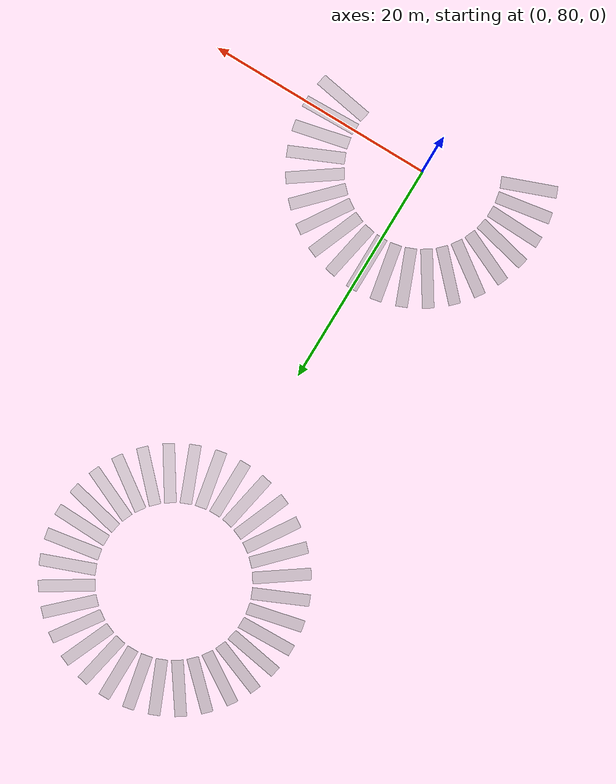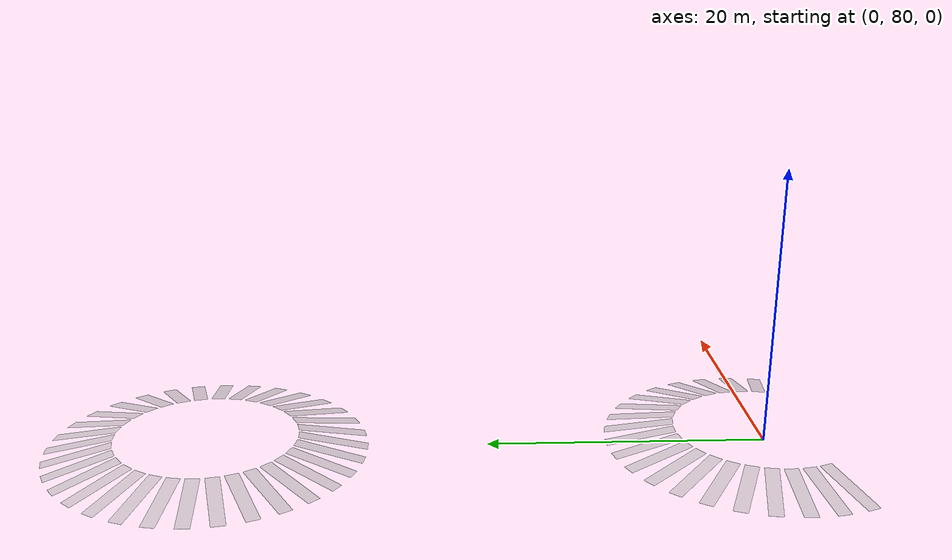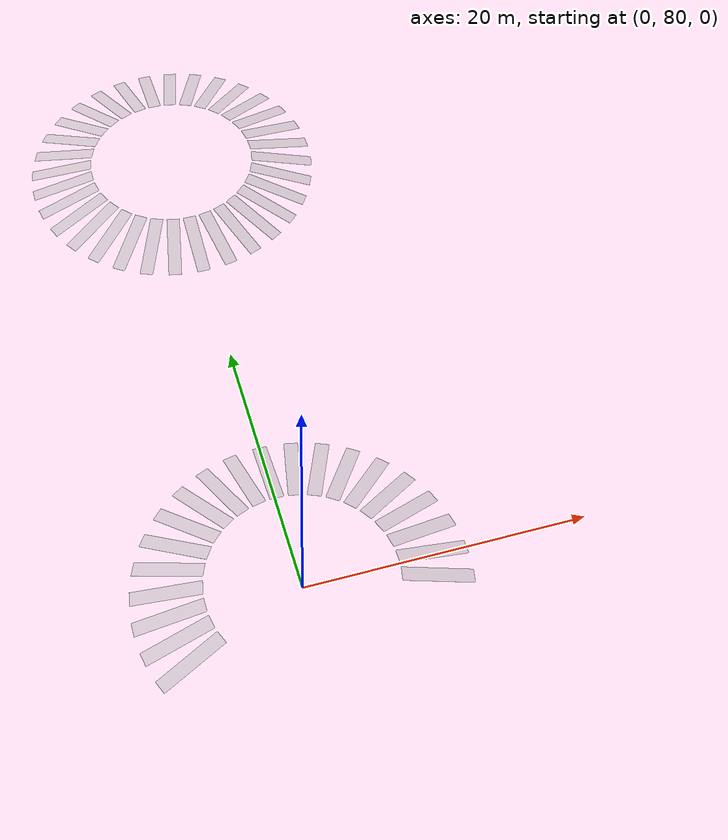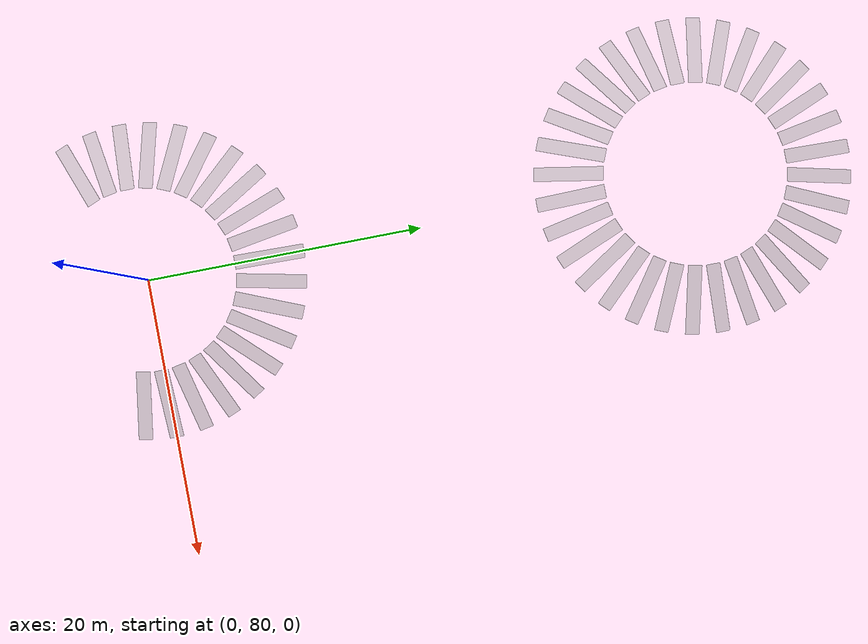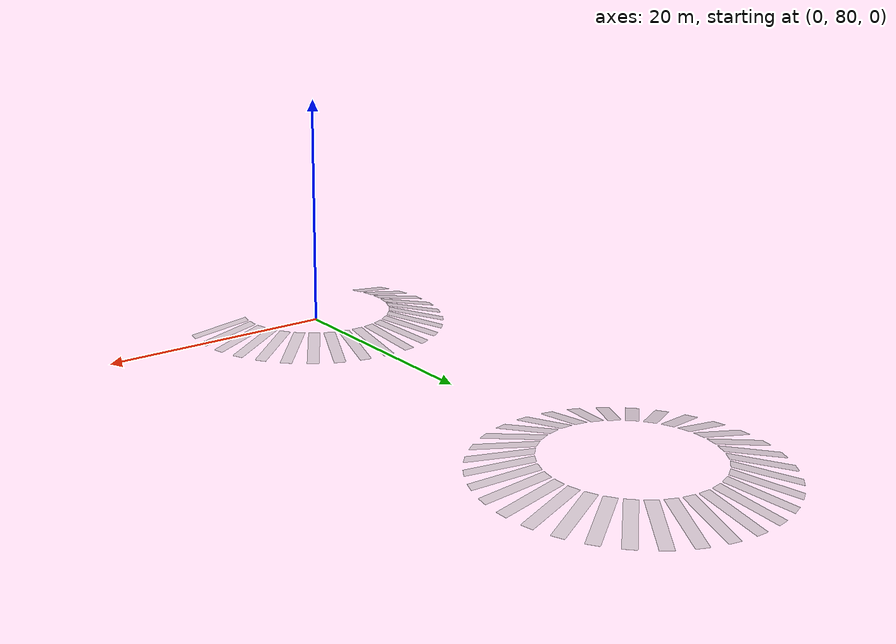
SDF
<sdf version="1.7">
 <world name="friction_pyramid">
  <model name="groundplane">
   <static>1</static>
   <link name="link">
    <collision name="collision">
     <geometry><plane><normal>0 0 1</normal><size>1 1</size></plane></geometry>
    </collision>
   </link>
  </model>
  <model name="boxes_mu2_ramp_0">
   <pose relative_to="groundplane">9.0 80.0 0.5 0 0.2 0.0</pose>
   <static>1</static>
   <link name="link">
    <collision name="collision">
     <pose relative_to="link">0 0 0 0 0 0</pose>
     <geometry><box><size>5 1 0.02</size></box></geometry>
     <surface>
      <contact><ode><kp>1e+06</kp><kd>1</kd></ode></contact>
      <friction><ode><mu>1</mu><mu2>1</mu2></ode></friction>
     </surface>
    </collision>
    <visual name="visual">
     <geometry><box><size>5 1 0.02</size></box></geometry>
     <material>
      <ambient>.3 .3 .3  0.5</ambient>
      <diffuse>.7 .7 .7  0.5</diffuse>
      <specular>0.01 0.01 0.01 1.000000</specular>
     </material>
    </visual>
    <gravity>0</gravity>
   </link>
  </model>
  <model name="boxes_mu2_ramp_1">
   <pose relative_to="groundplane">8.827067523629074 81.75581289814515 0.5 0 0.2 0.19634954084936207</pose>
   <static>1</static>
   <link name="link">
    <collision name="collision">
     <pose relative_to="link">0 0 0 0 0 0</pose>
     <geometry><box><size>5 1 0.02</size></box></geometry>
     <surface>
      <contact><ode><kp>1e+06</kp><kd>1</kd></ode></contact>
      <friction><ode><mu>1</mu><mu2>1</mu2></ode></friction>
     </surface>
    </collision>
    <visual name="visual">
     <geometry><box><size>5 1 0.02</size></box></geometry>
     <material>
      <ambient>.3 .3 .3  0.5</ambient>
      <diffuse>.7 .7 .7  0.5</diffuse>
      <specular>0.01 0.01 0.01 1.000000</specular>
     </material>
    </visual>
    <gravity>0</gravity>
   </link>
  </model>
  <model name="boxes_mu2_ramp_2">
   <pose relative_to="groundplane">8.31491579260158 83.4441508912858 0.5 0 0.2 0.39269908169872414</pose>
   <static>1</static>
   <link name="link">
    <collision name="collision">
     <pose relative_to="link">0 0 0 0 0 0</pose>
     <geometry><box><size>5 1 0.02</size></box></geometry>
     <surface>
      <contact><ode><kp>1e+06</kp><kd>1</kd></ode></contact>
      <friction><ode><mu>1</mu><mu2>1</mu2></ode></friction>
     </surface>
    </collision>
    <visual name="visual">
     <geometry><box><size>5 1 0.02</size></box></geometry>
     <material>
      <ambient>.3 .3 .3  0.5</ambient>
      <diffuse>.7 .7 .7  0.5</diffuse>
      <specular>0.01 0.01 0.01 1.000000</specular>
     </material>
    </visual>
    <gravity>0</gravity>
   </link>
  </model>
  <model name="boxes_mu2_ramp_3">
   <pose relative_to="groundplane">7.483226510722907 85.00013209717642 0.5 0 0.2 0.5890486225480862</pose>
   <static>1</static>
   <link name="link">
    <collision name="collision">
     <pose relative_to="link">0 0 0 0 0 0</pose>
     <geometry><box><size>5 1 0.02</size></box></geometry>
     <surface>
      <contact><ode><kp>1e+06</kp><kd>1</kd></ode></contact>
      <friction><ode><mu>1</mu><mu2>1</mu2></ode></friction>
     </surface>
    </collision>
    <visual name="visual">
     <geometry><box><size>5 1 0.02</size></box></geometry>
     <material>
      <ambient>.3 .3 .3  0.5</ambient>
      <diffuse>.7 .7 .7  0.5</diffuse>
      <specular>0.01 0.01 0.01 1.000000</specular>
     </material>
    </visual>
    <gravity>0</gravity>
   </link>
  </model>
  <model name="boxes_mu2_ramp_4">
   <pose relative_to="groundplane">6.3639610306789285 86.36396103067892 0.5 0 0.2 0.7853981633974483</pose>
   <static>1</static>
   <link name="link">
    <collision name="collision">
     <pose relative_to="link">0 0 0 0 0 0</pose>
     <geometry><box><size>5 1 0.02</size></box></geometry>
     <surface>
      <contact><ode><kp>1e+06</kp><kd>1</kd></ode></contact>
      <friction><ode><mu>1</mu><mu2>1</mu2></ode></friction>
     </surface>
    </collision>
    <visual name="visual">
     <geometry><box><size>5 1 0.02</size></box></geometry>
     <material>
      <ambient>.3 .3 .3  0.5</ambient>
      <diffuse>.7 .7 .7  0.5</diffuse>
      <specular>0.01 0.01 0.01 1.000000</specular>
     </material>
    </visual>
    <gravity>0</gravity>
   </link>
  </model>
  <model name="boxes_mu2_ramp_5">
   <pose relative_to="groundplane">5.0001320971764205 87.4832265107229 0.5 0 0.2 0.9817477042468103</pose>
   <static>1</static>
   <link name="link">
    <collision name="collision">
     <pose relative_to="link">0 0 0 0 0 0</pose>
     <geometry><box><size>5 1 0.02</size></box></geometry>
     <surface>
      <contact><ode><kp>1e+06</kp><kd>1</kd></ode></contact>
      <friction><ode><mu>1</mu><mu2>1</mu2></ode></friction>
     </surface>
    </collision>
    <visual name="visual">
     <geometry><box><size>5 1 0.02</size></box></geometry>
     <material>
      <ambient>.3 .3 .3  0.5</ambient>
      <diffuse>.7 .7 .7  0.5</diffuse>
      <specular>0.01 0.01 0.01 1.000000</specular>
     </material>
    </visual>
    <gravity>0</gravity>
   </link>
  </model>
  <model name="boxes_mu2_ramp_6">
   <pose relative_to="groundplane">3.4441508912858083 88.31491579260158 0.5 0 0.2 1.1780972450961724</pose>
   <static>1</static>
   <link name="link">
    <collision name="collision">
     <pose relative_to="link">0 0 0 0 0 0</pose>
     <geometry><box><size>5 1 0.02</size></box></geometry>
     <surface>
      <contact><ode><kp>1e+06</kp><kd>1</kd></ode></contact>
      <friction><ode><mu>1</mu><mu2>1</mu2></ode></friction>
     </surface>
    </collision>
    <visual name="visual">
     <geometry><box><size>5 1 0.02</size></box></geometry>
     <material>
      <ambient>.3 .3 .3  0.5</ambient>
      <diffuse>.7 .7 .7  0.5</diffuse>
      <specular>0.01 0.01 0.01 1.000000</specular>
     </material>
    </visual>
    <gravity>0</gravity>
   </link>
  </model>
  <model name="boxes_mu2_ramp_7">
   <pose relative_to="groundplane">1.755812898145155 88.82706752362907 0.5 0 0.2 1.3744467859455345</pose>
   <static>1</static>
   <link name="link">
    <collision name="collision">
     <pose relative_to="link">0 0 0 0 0 0</pose>
     <geometry><box><size>5 1 0.02</size></box></geometry>
     <surface>
      <contact><ode><kp>1e+06</kp><kd>1</kd></ode></contact>
      <friction><ode><mu>1</mu><mu2>1</mu2></ode></friction>
     </surface>
    </collision>
    <visual name="visual">
     <geometry><box><size>5 1 0.02</size></box></geometry>
     <material>
      <ambient>.3 .3 .3  0.5</ambient>
      <diffuse>.7 .7 .7  0.5</diffuse>
      <specular>0.01 0.01 0.01 1.000000</specular>
     </material>
    </visual>
    <gravity>0</gravity>
   </link>
  </model>
  <model name="boxes_mu2_ramp_8">
   <pose relative_to="groundplane">5.51091059616309e-16 89.0 0.5 0 0.2 1.5707963267948966</pose>
   <static>1</static>
   <link name="link">
    <collision name="collision">
     <pose relative_to="link">0 0 0 0 0 0</pose>
     <geometry><box><size>5 1 0.02</size></box></geometry>
     <surface>
      <contact><ode><kp>1e+06</kp><kd>1</kd></ode></contact>
      <friction><ode><mu>1</mu><mu2>1</mu2></ode></friction>
     </surface>
    </collision>
    <visual name="visual">
     <geometry><box><size>5 1 0.02</size></box></geometry>
     <material>
      <ambient>.3 .3 .3  0.5</ambient>
      <diffuse>.7 .7 .7  0.5</diffuse>
      <specular>0.01 0.01 0.01 1.000000</specular>
     </material>
    </visual>
    <gravity>0</gravity>
   </link>
  </model>
  <model name="boxes_mu2_ramp_9">
   <pose relative_to="groundplane">-1.7558128981451537 88.82706752362907 0.5 0 0.2 1.7671458676442586</pose>
   <static>1</static>
   <link name="link">
    <collision name="collision">
     <pose relative_to="link">0 0 0 0 0 0</pose>
     <geometry><box><size>5 1 0.02</size></box></geometry>
     <surface>
      <contact><ode><kp>1e+06</kp><kd>1</kd></ode></contact>
      <friction><ode><mu>1</mu><mu2>1</mu2></ode></friction>
     </surface>
    </collision>
    <visual name="visual">
     <geometry><box><size>5 1 0.02</size></box></geometry>
     <material>
      <ambient>.3 .3 .3  0.5</ambient>
      <diffuse>.7 .7 .7  0.5</diffuse>
      <specular>0.01 0.01 0.01 1.000000</specular>
     </material>
    </visual>
    <gravity>0</gravity>
   </link>
  </model>
  <model name="boxes_mu2_ramp_10">
   <pose relative_to="groundplane">-3.4441508912858074 88.31491579260158 0.5 0 0.2 1.9634954084936207</pose>
   <static>1</static>
   <link name="link">
    <collision name="collision">
     <pose relative_to="link">0 0 0 0 0 0</pose>
     <geometry><box><size>5 1 0.02</size></box></geometry>
     <surface>
      <contact><ode><kp>1e+06</kp><kd>1</kd></ode></contact>
      <friction><ode><mu>1</mu><mu2>1</mu2></ode></friction>
     </surface>
    </collision>
    <visual name="visual">
     <geometry><box><size>5 1 0.02</size></box></geometry>
     <material>
      <ambient>.3 .3 .3  0.5</ambient>
      <diffuse>.7 .7 .7  0.5</diffuse>
      <specular>0.01 0.01 0.01 1.000000</specular>
     </material>
    </visual>
    <gravity>0</gravity>
   </link>
  </model>
  <model name="boxes_mu2_ramp_11">
   <pose relative_to="groundplane">-5.000132097176418 87.48322651072291 0.5 0 0.2 2.1598449493429825</pose>
   <static>1</static>
   <link name="link">
    <collision name="collision">
     <pose relative_to="link">0 0 0 0 0 0</pose>
     <geometry><box><size>5 1 0.02</size></box></geometry>
     <surface>
      <contact><ode><kp>1e+06</kp><kd>1</kd></ode></contact>
      <friction><ode><mu>1</mu><mu2>1</mu2></ode></friction>
     </surface>
    </collision>
    <visual name="visual">
     <geometry><box><size>5 1 0.02</size></box></geometry>
     <material>
      <ambient>.3 .3 .3  0.5</ambient>
      <diffuse>.7 .7 .7  0.5</diffuse>
      <specular>0.01 0.01 0.01 1.000000</specular>
     </material>
    </visual>
    <gravity>0</gravity>
   </link>
  </model>
  <model name="boxes_mu2_ramp_12">
   <pose relative_to="groundplane">-6.363961030678928 86.36396103067892 0.5 0 0.2 2.356194490192345</pose>
   <static>1</static>
   <link name="link">
    <collision name="collision">
     <pose relative_to="link">0 0 0 0 0 0</pose>
     <geometry><box><size>5 1 0.02</size></box></geometry>
     <surface>
      <contact><ode><kp>1e+06</kp><kd>1</kd></ode></contact>
      <friction><ode><mu>1</mu><mu2>1</mu2></ode></friction>
     </surface>
    </collision>
    <visual name="visual">
     <geometry><box><size>5 1 0.02</size></box></geometry>
     <material>
      <ambient>.3 .3 .3  0.5</ambient>
      <diffuse>.7 .7 .7  0.5</diffuse>
      <specular>0.01 0.01 0.01 1.000000</specular>
     </material>
    </visual>
    <gravity>0</gravity>
   </link>
  </model>
  <model name="boxes_mu2_ramp_13">
   <pose relative_to="groundplane">-7.483226510722908 85.00013209717642 0.5 0 0.2 2.552544031041707</pose>
   <static>1</static>
   <link name="link">
    <collision name="collision">
     <pose relative_to="link">0 0 0 0 0 0</pose>
     <geometry><box><size>5 1 0.02</size></box></geometry>
     <surface>
      <contact><ode><kp>1e+06</kp><kd>1</kd></ode></contact>
      <friction><ode><mu>1</mu><mu2>1</mu2></ode></friction>
     </surface>
    </collision>
    <visual name="visual">
     <geometry><box><size>5 1 0.02</size></box></geometry>
     <material>
      <ambient>.3 .3 .3  0.5</ambient>
      <diffuse>.7 .7 .7  0.5</diffuse>
      <specular>0.01 0.01 0.01 1.000000</specular>
     </material>
    </visual>
    <gravity>0</gravity>
   </link>
  </model>
  <model name="boxes_mu2_ramp_14">
   <pose relative_to="groundplane">-8.31491579260158 83.44415089128582 0.5 0 0.2 2.748893571891069</pose>
   <static>1</static>
   <link name="link">
    <collision name="collision">
     <pose relative_to="link">0 0 0 0 0 0</pose>
     <geometry><box><size>5 1 0.02</size></box></geometry>
     <surface>
      <contact><ode><kp>1e+06</kp><kd>1</kd></ode></contact>
      <friction><ode><mu>1</mu><mu2>1</mu2></ode></friction>
     </surface>
    </collision>
    <visual name="visual">
     <geometry><box><size>5 1 0.02</size></box></geometry>
     <material>
      <ambient>.3 .3 .3  0.5</ambient>
      <diffuse>.7 .7 .7  0.5</diffuse>
      <specular>0.01 0.01 0.01 1.000000</specular>
     </material>
    </visual>
    <gravity>0</gravity>
   </link>
  </model>
  <model name="boxes_mu2_ramp_15">
   <pose relative_to="groundplane">-8.827067523629074 81.75581289814515 0.5 0 0.2 2.945243112740431</pose>
   <static>1</static>
   <link name="link">
    <collision name="collision">
     <pose relative_to="link">0 0 0 0 0 0</pose>
     <geometry><box><size>5 1 0.02</size></box></geometry>
     <surface>
      <contact><ode><kp>1e+06</kp><kd>1</kd></ode></contact>
      <friction><ode><mu>1</mu><mu2>1</mu2></ode></friction>
     </surface>
    </collision>
    <visual name="visual">
     <geometry><box><size>5 1 0.02</size></box></geometry>
     <material>
      <ambient>.3 .3 .3  0.5</ambient>
      <diffuse>.7 .7 .7  0.5</diffuse>
      <specular>0.01 0.01 0.01 1.000000</specular>
     </material>
    </visual>
    <gravity>0</gravity>
   </link>
  </model>
  <model name="boxes_mu2_ramp_16">
   <pose relative_to="groundplane">-9.0 80.0 0.5 0 0.2 3.141592653589793</pose>
   <static>1</static>
   <link name="link">
    <collision name="collision">
     <pose relative_to="link">0 0 0 0 0 0</pose>
     <geometry><box><size>5 1 0.02</size></box></geometry>
     <surface>
      <contact><ode><kp>1e+06</kp><kd>1</kd></ode></contact>
      <friction><ode><mu>1</mu><mu2>1</mu2></ode></friction>
     </surface>
    </collision>
    <visual name="visual">
     <geometry><box><size>5 1 0.02</size></box></geometry>
     <material>
      <ambient>.3 .3 .3  0.5</ambient>
      <diffuse>.7 .7 .7  0.5</diffuse>
      <specular>0.01 0.01 0.01 1.000000</specular>
     </material>
    </visual>
    <gravity>0</gravity>
   </link>
  </model>
  <model name="boxes_mu2_ramp_17">
   <pose relative_to="groundplane">-8.827067523629074 78.24418710185485 0.5 0 0.2 3.3379421944391554</pose>
   <static>1</static>
   <link name="link">
    <collision name="collision">
     <pose relative_to="link">0 0 0 0 0 0</pose>
     <geometry><box><size>5 1 0.02</size></box></geometry>
     <surface>
      <contact><ode><kp>1e+06</kp><kd>1</kd></ode></contact>
      <friction><ode><mu>1</mu><mu2>1</mu2></ode></friction>
     </surface>
    </collision>
    <visual name="visual">
     <geometry><box><size>5 1 0.02</size></box></geometry>
     <material>
      <ambient>.3 .3 .3  0.5</ambient>
      <diffuse>.7 .7 .7  0.5</diffuse>
      <specular>0.01 0.01 0.01 1.000000</specular>
     </material>
    </visual>
    <gravity>0</gravity>
   </link>
  </model>
  <model name="boxes_mu2_ramp_18">
   <pose relative_to="groundplane">-8.314915792601582 76.5558491087142 0.5 0 0.2 3.5342917352885173</pose>
   <static>1</static>
   <link name="link">
    <collision name="collision">
     <pose relative_to="link">0 0 0 0 0 0</pose>
     <geometry><box><size>5 1 0.02</size></box></geometry>
     <surface>
      <contact><ode><kp>1e+06</kp><kd>1</kd></ode></contact>
      <friction><ode><mu>1</mu><mu2>1</mu2></ode></friction>
     </surface>
    </collision>
    <visual name="visual">
     <geometry><box><size>5 1 0.02</size></box></geometry>
     <material>
      <ambient>.3 .3 .3  0.5</ambient>
      <diffuse>.7 .7 .7  0.5</diffuse>
      <specular>0.01 0.01 0.01 1.000000</specular>
     </material>
    </visual>
    <gravity>0</gravity>
   </link>
  </model>
  <model name="boxes_mu2_ramp_31">
   <pose relative_to="groundplane">8.827067523629072 78.24418710185485 0.5 0 0.2 6.086835766330224</pose>
   <static>1</static>
   <link name="link">
    <collision name="collision">
     <pose relative_to="link">0 0 0 0 0 0</pose>
     <geometry><box><size>5 1 0.02</size></box></geometry>
     <surface>
      <contact><ode><kp>1e+06</kp><kd>1</kd></ode></contact>
      <friction><ode><mu>1</mu><mu2>1</mu2></ode></friction>
     </surface>
    </collision>
    <visual name="visual">
     <geometry><box><size>5 1 0.02</size></box></geometry>
     <material>
      <ambient>.3 .3 .3  0.5</ambient>
      <diffuse>.7 .7 .7  0.5</diffuse>
      <specular>0.01 0.01 0.01 1.000000</specular>
     </material>
    </visual>
    <gravity>0</gravity>
   </link>
  </model>
  <model name="boxes_fdir_ramp_0">
   <pose relative_to="groundplane">9.0 120.0 0.5 0 0.2 0.0</pose>
   <static>1</static>
   <link name="link">
    <collision name="collision">
     <pose relative_to="link">0 0 0 0 0 0</pose>
     <geometry><box><size>5 1 0.02</size></box></geometry>
     <surface>
      <contact><ode><kp>1e+06</kp><kd>1</kd></ode></contact>
      <friction><ode><mu>1</mu><mu2>1</mu2></ode></friction>
     </surface>
    </collision>
    <visual name="visual">
     <geometry><box><size>5 1 0.02</size></box></geometry>
     <material>
      <ambient>.3 .3 .3  0.5</ambient>
      <diffuse>.7 .7 .7  0.5</diffuse>
      <specular>0.01 0.01 0.01 1.000000</specular>
     </material>
    </visual>
    <gravity>0</gravity>
   </link>
  </model>
  <model name="boxes_fdir_ramp_1">
   <pose relative_to="groundplane">8.827067523629074 121.75581289814515 0.5 0 0.2 0.19634954084936207</pose>
   <static>1</static>
   <link name="link">
    <collision name="collision">
     <pose relative_to="link">0 0 0 0 0 0</pose>
     <geometry><box><size>5 1 0.02</size></box></geometry>
     <surface>
      <contact><ode><kp>1e+06</kp><kd>1</kd></ode></contact>
      <friction><ode><mu>1</mu><mu2>1</mu2></ode></friction>
     </surface>
    </collision>
    <visual name="visual">
     <geometry><box><size>5 1 0.02</size></box></geometry>
     <material>
      <ambient>.3 .3 .3  0.5</ambient>
      <diffuse>.7 .7 .7  0.5</diffuse>
      <specular>0.01 0.01 0.01 1.000000</specular>
     </material>
    </visual>
    <gravity>0</gravity>
   </link>
  </model>
  <model name="boxes_fdir_ramp_2">
   <pose relative_to="groundplane">8.31491579260158 123.4441508912858 0.5 0 0.2 0.39269908169872414</pose>
   <static>1</static>
   <link name="link">
    <collision name="collision">
     <pose relative_to="link">0 0 0 0 0 0</pose>
     <geometry><box><size>5 1 0.02</size></box></geometry>
     <surface>
      <contact><ode><kp>1e+06</kp><kd>1</kd></ode></contact>
      <friction><ode><mu>1</mu><mu2>1</mu2></ode></friction>
     </surface>
    </collision>
    <visual name="visual">
     <geometry><box><size>5 1 0.02</size></box></geometry>
     <material>
      <ambient>.3 .3 .3  0.5</ambient>
      <diffuse>.7 .7 .7  0.5</diffuse>
      <specular>0.01 0.01 0.01 1.000000</specular>
     </material>
    </visual>
    <gravity>0</gravity>
   </link>
  </model>
  <model name="boxes_fdir_ramp_3">
   <pose relative_to="groundplane">7.483226510722907 125.00013209717642 0.5 0 0.2 0.5890486225480862</pose>
   <static>1</static>
   <link name="link">
    <collision name="collision">
     <pose relative_to="link">0 0 0 0 0 0</pose>
     <geometry><box><size>5 1 0.02</size></box></geometry>
     <surface>
      <contact><ode><kp>1e+06</kp><kd>1</kd></ode></contact>
      <friction><ode><mu>1</mu><mu2>1</mu2></ode></friction>
     </surface>
    </collision>
    <visual name="visual">
     <geometry><box><size>5 1 0.02</size></box></geometry>
     <material>
      <ambient>.3 .3 .3  0.5</ambient>
      <diffuse>.7 .7 .7  0.5</diffuse>
      <specular>0.01 0.01 0.01 1.000000</specular>
     </material>
    </visual>
    <gravity>0</gravity>
   </link>
  </model>
  <model name="boxes_fdir_ramp_4">
   <pose relative_to="groundplane">6.3639610306789285 126.36396103067892 0.5 0 0.2 0.7853981633974483</pose>
   <static>1</static>
   <link name="link">
    <collision name="collision">
     <pose relative_to="link">0 0 0 0 0 0</pose>
     <geometry><box><size>5 1 0.02</size></box></geometry>
     <surface>
      <contact><ode><kp>1e+06</kp><kd>1</kd></ode></contact>
      <friction><ode><mu>1</mu><mu2>1</mu2></ode></friction>
     </surface>
    </collision>
    <visual name="visual">
     <geometry><box><size>5 1 0.02</size></box></geometry>
     <material>
      <ambient>.3 .3 .3  0.5</ambient>
      <diffuse>.7 .7 .7  0.5</diffuse>
      <specular>0.01 0.01 0.01 1.000000</specular>
     </material>
    </visual>
    <gravity>0</gravity>
   </link>
  </model>
  <model name="boxes_fdir_ramp_5">
   <pose relative_to="groundplane">5.0001320971764205 127.4832265107229 0.5 0 0.2 0.9817477042468103</pose>
   <static>1</static>
   <link name="link">
    <collision name="collision">
     <pose relative_to="link">0 0 0 0 0 0</pose>
     <geometry><box><size>5 1 0.02</size></box></geometry>
     <surface>
      <contact><ode><kp>1e+06</kp><kd>1</kd></ode></contact>
      <friction><ode><mu>1</mu><mu2>1</mu2></ode></friction>
     </surface>
    </collision>
    <visual name="visual">
     <geometry><box><size>5 1 0.02</size></box></geometry>
     <material>
      <ambient>.3 .3 .3  0.5</ambient>
      <diffuse>.7 .7 .7  0.5</diffuse>
      <specular>0.01 0.01 0.01 1.000000</specular>
     </material>
    </visual>
    <gravity>0</gravity>
   </link>
  </model>
  <model name="boxes_fdir_ramp_6">
   <pose relative_to="groundplane">3.4441508912858083 128.31491579260157 0.5 0 0.2 1.1780972450961724</pose>
   <static>1</static>
   <link name="link">
    <collision name="collision">
     <pose relative_to="link">0 0 0 0 0 0</pose>
     <geometry><box><size>5 1 0.02</size></box></geometry>
     <surface>
      <contact><ode><kp>1e+06</kp><kd>1</kd></ode></contact>
      <friction><ode><mu>1</mu><mu2>1</mu2></ode></friction>
     </surface>
    </collision>
    <visual name="visual">
     <geometry><box><size>5 1 0.02</size></box></geometry>
     <material>
      <ambient>.3 .3 .3  0.5</ambient>
      <diffuse>.7 .7 .7  0.5</diffuse>
      <specular>0.01 0.01 0.01 1.000000</specular>
     </material>
    </visual>
    <gravity>0</gravity>
   </link>
  </model>
  <model name="boxes_fdir_ramp_7">
   <pose relative_to="groundplane">1.755812898145155 128.82706752362907 0.5 0 0.2 1.3744467859455345</pose>
   <static>1</static>
   <link name="link">
    <collision name="collision">
     <pose relative_to="link">0 0 0 0 0 0</pose>
     <geometry><box><size>5 1 0.02</size></box></geometry>
     <surface>
      <contact><ode><kp>1e+06</kp><kd>1</kd></ode></contact>
      <friction><ode><mu>1</mu><mu2>1</mu2></ode></friction>
     </surface>
    </collision>
    <visual name="visual">
     <geometry><box><size>5 1 0.02</size></box></geometry>
     <material>
      <ambient>.3 .3 .3  0.5</ambient>
      <diffuse>.7 .7 .7  0.5</diffuse>
      <specular>0.01 0.01 0.01 1.000000</specular>
     </material>
    </visual>
    <gravity>0</gravity>
   </link>
  </model>
  <model name="boxes_fdir_ramp_8">
   <pose relative_to="groundplane">5.51091059616309e-16 129.0 0.5 0 0.2 1.5707963267948966</pose>
   <static>1</static>
   <link name="link">
    <collision name="collision">
     <pose relative_to="link">0 0 0 0 0 0</pose>
     <geometry><box><size>5 1 0.02</size></box></geometry>
     <surface>
      <contact><ode><kp>1e+06</kp><kd>1</kd></ode></contact>
      <friction><ode><mu>1</mu><mu2>1</mu2></ode></friction>
     </surface>
    </collision>
    <visual name="visual">
     <geometry><box><size>5 1 0.02</size></box></geometry>
     <material>
      <ambient>.3 .3 .3  0.5</ambient>
      <diffuse>.7 .7 .7  0.5</diffuse>
      <specular>0.01 0.01 0.01 1.000000</specular>
     </material>
    </visual>
    <gravity>0</gravity>
   </link>
  </model>
  <model name="boxes_fdir_ramp_9">
   <pose relative_to="groundplane">-1.7558128981451537 128.82706752362907 0.5 0 0.2 1.7671458676442586</pose>
   <static>1</static>
   <link name="link">
    <collision name="collision">
     <pose relative_to="link">0 0 0 0 0 0</pose>
     <geometry><box><size>5 1 0.02</size></box></geometry>
     <surface>
      <contact><ode><kp>1e+06</kp><kd>1</kd></ode></contact>
      <friction><ode><mu>1</mu><mu2>1</mu2></ode></friction>
     </surface>
    </collision>
    <visual name="visual">
     <geometry><box><size>5 1 0.02</size></box></geometry>
     <material>
      <ambient>.3 .3 .3  0.5</ambient>
      <diffuse>.7 .7 .7  0.5</diffuse>
      <specular>0.01 0.01 0.01 1.000000</specular>
     </material>
    </visual>
    <gravity>0</gravity>
   </link>
  </model>
  <model name="boxes_fdir_ramp_10">
   <pose relative_to="groundplane">-3.4441508912858074 128.31491579260157 0.5 0 0.2 1.9634954084936207</pose>
   <static>1</static>
   <link name="link">
    <collision name="collision">
     <pose relative_to="link">0 0 0 0 0 0</pose>
     <geometry><box><size>5 1 0.02</size></box></geometry>
     <surface>
      <contact><ode><kp>1e+06</kp><kd>1</kd></ode></contact>
      <friction><ode><mu>1</mu><mu2>1</mu2></ode></friction>
     </surface>
    </collision>
    <visual name="visual">
     <geometry><box><size>5 1 0.02</size></box></geometry>
     <material>
      <ambient>.3 .3 .3  0.5</ambient>
      <diffuse>.7 .7 .7  0.5</diffuse>
      <specular>0.01 0.01 0.01 1.000000</specular>
     </material>
    </visual>
    <gravity>0</gravity>
   </link>
  </model>
  <model name="boxes_fdir_ramp_11">
   <pose relative_to="groundplane">-5.000132097176418 127.48322651072291 0.5 0 0.2 2.1598449493429825</pose>
   <static>1</static>
   <link name="link">
    <collision name="collision">
     <pose relative_to="link">0 0 0 0 0 0</pose>
     <geometry><box><size>5 1 0.02</size></box></geometry>
     <surface>
      <contact><ode><kp>1e+06</kp><kd>1</kd></ode></contact>
      <friction><ode><mu>1</mu><mu2>1</mu2></ode></friction>
     </surface>
    </collision>
    <visual name="visual">
     <geometry><box><size>5 1 0.02</size></box></geometry>
     <material>
      <ambient>.3 .3 .3  0.5</ambient>
      <diffuse>.7 .7 .7  0.5</diffuse>
      <specular>0.01 0.01 0.01 1.000000</specular>
     </material>
    </visual>
    <gravity>0</gravity>
   </link>
  </model>
  <model name="boxes_fdir_ramp_12">
   <pose relative_to="groundplane">-6.363961030678928 126.36396103067892 0.5 0 0.2 2.356194490192345</pose>
   <static>1</static>
   <link name="link">
    <collision name="collision">
     <pose relative_to="link">0 0 0 0 0 0</pose>
     <geometry><box><size>5 1 0.02</size></box></geometry>
     <surface>
      <contact><ode><kp>1e+06</kp><kd>1</kd></ode></contact>
      <friction><ode><mu>1</mu><mu2>1</mu2></ode></friction>
     </surface>
    </collision>
    <visual name="visual">
     <geometry><box><size>5 1 0.02</size></box></geometry>
     <material>
      <ambient>.3 .3 .3  0.5</ambient>
      <diffuse>.7 .7 .7  0.5</diffuse>
      <specular>0.01 0.01 0.01 1.000000</specular>
     </material>
    </visual>
    <gravity>0</gravity>
   </link>
  </model>
  <model name="boxes_fdir_ramp_13">
   <pose relative_to="groundplane">-7.483226510722908 125.00013209717642 0.5 0 0.2 2.552544031041707</pose>
   <static>1</static>
   <link name="link">
    <collision name="collision">
     <pose relative_to="link">0 0 0 0 0 0</pose>
     <geometry><box><size>5 1 0.02</size></box></geometry>
     <surface>
      <contact><ode><kp>1e+06</kp><kd>1</kd></ode></contact>
      <friction><ode><mu>1</mu><mu2>1</mu2></ode></friction>
     </surface>
    </collision>
    <visual name="visual">
     <geometry><box><size>5 1 0.02</size></box></geometry>
     <material>
      <ambient>.3 .3 .3  0.5</ambient>
      <diffuse>.7 .7 .7  0.5</diffuse>
      <specular>0.01 0.01 0.01 1.000000</specular>
     </material>
    </visual>
    <gravity>0</gravity>
   </link>
  </model>
  <model name="boxes_fdir_ramp_14">
   <pose relative_to="groundplane">-8.31491579260158 123.44415089128582 0.5 0 0.2 2.748893571891069</pose>
   <static>1</static>
   <link name="link">
    <collision name="collision">
     <pose relative_to="link">0 0 0 0 0 0</pose>
     <geometry><box><size>5 1 0.02</size></box></geometry>
     <surface>
      <contact><ode><kp>1e+06</kp><kd>1</kd></ode></contact>
      <friction><ode><mu>1</mu><mu2>1</mu2></ode></friction>
     </surface>
    </collision>
    <visual name="visual">
     <geometry><box><size>5 1 0.02</size></box></geometry>
     <material>
      <ambient>.3 .3 .3  0.5</ambient>
      <diffuse>.7 .7 .7  0.5</diffuse>
      <specular>0.01 0.01 0.01 1.000000</specular>
     </material>
    </visual>
    <gravity>0</gravity>
   </link>
  </model>
  <model name="boxes_fdir_ramp_15">
   <pose relative_to="groundplane">-8.827067523629074 121.75581289814515 0.5 0 0.2 2.945243112740431</pose>
   <static>1</static>
   <link name="link">
    <collision name="collision">
     <pose relative_to="link">0 0 0 0 0 0</pose>
     <geometry><box><size>5 1 0.02</size></box></geometry>
     <surface>
      <contact><ode><kp>1e+06</kp><kd>1</kd></ode></contact>
      <friction><ode><mu>1</mu><mu2>1</mu2></ode></friction>
     </surface>
    </collision>
    <visual name="visual">
     <geometry><box><size>5 1 0.02</size></box></geometry>
     <material>
      <ambient>.3 .3 .3  0.5</ambient>
      <diffuse>.7 .7 .7  0.5</diffuse>
      <specular>0.01 0.01 0.01 1.000000</specular>
     </material>
    </visual>
    <gravity>0</gravity>
   </link>
  </model>
  <model name="boxes_fdir_ramp_16">
   <pose relative_to="groundplane">-9.0 120.0 0.5 0 0.2 3.141592653589793</pose>
   <static>1</static>
   <link name="link">
    <collision name="collision">
     <pose relative_to="link">0 0 0 0 0 0</pose>
     <geometry><box><size>5 1 0.02</size></box></geometry>
     <surface>
      <contact><ode><kp>1e+06</kp><kd>1</kd></ode></contact>
      <friction><ode><mu>1</mu><mu2>1</mu2></ode></friction>
     </surface>
    </collision>
    <visual name="visual">
     <geometry><box><size>5 1 0.02</size></box></geometry>
     <material>
      <ambient>.3 .3 .3  0.5</ambient>
      <diffuse>.7 .7 .7  0.5</diffuse>
      <specular>0.01 0.01 0.01 1.000000</specular>
     </material>
    </visual>
    <gravity>0</gravity>
   </link>
  </model>
  <model name="boxes_fdir_ramp_17">
   <pose relative_to="groundplane">-8.827067523629074 118.24418710185485 0.5 0 0.2 3.3379421944391554</pose>
   <static>1</static>
   <link name="link">
    <collision name="collision">
     <pose relative_to="link">0 0 0 0 0 0</pose>
     <geometry><box><size>5 1 0.02</size></box></geometry>
     <surface>
      <contact><ode><kp>1e+06</kp><kd>1</kd></ode></contact>
      <friction><ode><mu>1</mu><mu2>1</mu2></ode></friction>
     </surface>
    </collision>
    <visual name="visual">
     <geometry><box><size>5 1 0.02</size></box></geometry>
     <material>
      <ambient>.3 .3 .3  0.5</ambient>
      <diffuse>.7 .7 .7  0.5</diffuse>
      <specular>0.01 0.01 0.01 1.000000</specular>
     </material>
    </visual>
    <gravity>0</gravity>
   </link>
  </model>
  <model name="boxes_fdir_ramp_18">
   <pose relative_to="groundplane">-8.314915792601582 116.5558491087142 0.5 0 0.2 3.5342917352885173</pose>
   <static>1</static>
   <link name="link">
    <collision name="collision">
     <pose relative_to="link">0 0 0 0 0 0</pose>
     <geometry><box><size>5 1 0.02</size></box></geometry>
     <surface>
      <contact><ode><kp>1e+06</kp><kd>1</kd></ode></contact>
      <friction><ode><mu>1</mu><mu2>1</mu2></ode></friction>
     </surface>
    </collision>
    <visual name="visual">
     <geometry><box><size>5 1 0.02</size></box></geometry>
     <material>
      <ambient>.3 .3 .3  0.5</ambient>
      <diffuse>.7 .7 .7  0.5</diffuse>
      <specular>0.01 0.01 0.01 1.000000</specular>
     </material>
    </visual>
    <gravity>0</gravity>
   </link>
  </model>
  <model name="boxes_fdir_ramp_19">
   <pose relative_to="groundplane">-7.4832265107229095 114.99986790282358 0.5 0 0.2 3.730641276137879</pose>
   <static>1</static>
   <link name="link">
    <collision name="collision">
     <pose relative_to="link">0 0 0 0 0 0</pose>
     <geometry><box><size>5 1 0.02</size></box></geometry>
     <surface>
      <contact><ode><kp>1e+06</kp><kd>1</kd></ode></contact>
      <friction><ode><mu>1</mu><mu2>1</mu2></ode></friction>
     </surface>
    </collision>
    <visual name="visual">
     <geometry><box><size>5 1 0.02</size></box></geometry>
     <material>
      <ambient>.3 .3 .3  0.5</ambient>
      <diffuse>.7 .7 .7  0.5</diffuse>
      <specular>0.01 0.01 0.01 1.000000</specular>
     </material>
    </visual>
    <gravity>0</gravity>
   </link>
  </model>
  <model name="boxes_fdir_ramp_20">
   <pose relative_to="groundplane">-6.363961030678929 113.63603896932108 0.5 0 0.2 3.9269908169872414</pose>
   <static>1</static>
   <link name="link">
    <collision name="collision">
     <pose relative_to="link">0 0 0 0 0 0</pose>
     <geometry><box><size>5 1 0.02</size></box></geometry>
     <surface>
      <contact><ode><kp>1e+06</kp><kd>1</kd></ode></contact>
      <friction><ode><mu>1</mu><mu2>1</mu2></ode></friction>
     </surface>
    </collision>
    <visual name="visual">
     <geometry><box><size>5 1 0.02</size></box></geometry>
     <material>
      <ambient>.3 .3 .3  0.5</ambient>
      <diffuse>.7 .7 .7  0.5</diffuse>
      <specular>0.01 0.01 0.01 1.000000</specular>
     </material>
    </visual>
    <gravity>0</gravity>
   </link>
  </model>
  <model name="boxes_fdir_ramp_21">
   <pose relative_to="groundplane">-5.00013209717642 112.5167734892771 0.5 0 0.2 4.123340357836604</pose>
   <static>1</static>
   <link name="link">
    <collision name="collision">
     <pose relative_to="link">0 0 0 0 0 0</pose>
     <geometry><box><size>5 1 0.02</size></box></geometry>
     <surface>
      <contact><ode><kp>1e+06</kp><kd>1</kd></ode></contact>
      <friction><ode><mu>1</mu><mu2>1</mu2></ode></friction>
     </surface>
    </collision>
    <visual name="visual">
     <geometry><box><size>5 1 0.02</size></box></geometry>
     <material>
      <ambient>.3 .3 .3  0.5</ambient>
      <diffuse>.7 .7 .7  0.5</diffuse>
      <specular>0.01 0.01 0.01 1.000000</specular>
     </material>
    </visual>
    <gravity>0</gravity>
   </link>
  </model>
  <model name="boxes_fdir_ramp_22">
   <pose relative_to="groundplane">-3.444150891285813 111.68508420739842 0.5 0 0.2 4.319689898685965</pose>
   <static>1</static>
   <link name="link">
    <collision name="collision">
     <pose relative_to="link">0 0 0 0 0 0</pose>
     <geometry><box><size>5 1 0.02</size></box></geometry>
     <surface>
      <contact><ode><kp>1e+06</kp><kd>1</kd></ode></contact>
      <friction><ode><mu>1</mu><mu2>1</mu2></ode></friction>
     </surface>
    </collision>
    <visual name="visual">
     <geometry><box><size>5 1 0.02</size></box></geometry>
     <material>
      <ambient>.3 .3 .3  0.5</ambient>
      <diffuse>.7 .7 .7  0.5</diffuse>
      <specular>0.01 0.01 0.01 1.000000</specular>
     </material>
    </visual>
    <gravity>0</gravity>
   </link>
  </model>
  <model name="boxes_fdir_ramp_23">
   <pose relative_to="groundplane">-1.755812898145158 111.17293247637093 0.5 0 0.2 4.516039439535327</pose>
   <static>1</static>
   <link name="link">
    <collision name="collision">
     <pose relative_to="link">0 0 0 0 0 0</pose>
     <geometry><box><size>5 1 0.02</size></box></geometry>
     <surface>
      <contact><ode><kp>1e+06</kp><kd>1</kd></ode></contact>
      <friction><ode><mu>1</mu><mu2>1</mu2></ode></friction>
     </surface>
    </collision>
    <visual name="visual">
     <geometry><box><size>5 1 0.02</size></box></geometry>
     <material>
      <ambient>.3 .3 .3  0.5</ambient>
      <diffuse>.7 .7 .7  0.5</diffuse>
      <specular>0.01 0.01 0.01 1.000000</specular>
     </material>
    </visual>
    <gravity>0</gravity>
   </link>
  </model>
  <model name="boxes_fdir_ramp_24">
   <pose relative_to="groundplane">-1.6532731788489267e-15 111.0 0.5 0 0.2 4.71238898038469</pose>
   <static>1</static>
   <link name="link">
    <collision name="collision">
     <pose relative_to="link">0 0 0 0 0 0</pose>
     <geometry><box><size>5 1 0.02</size></box></geometry>
     <surface>
      <contact><ode><kp>1e+06</kp><kd>1</kd></ode></contact>
      <friction><ode><mu>1</mu><mu2>1</mu2></ode></friction>
     </surface>
    </collision>
    <visual name="visual">
     <geometry><box><size>5 1 0.02</size></box></geometry>
     <material>
      <ambient>.3 .3 .3  0.5</ambient>
      <diffuse>.7 .7 .7  0.5</diffuse>
      <specular>0.01 0.01 0.01 1.000000</specular>
     </material>
    </visual>
    <gravity>0</gravity>
   </link>
  </model>
  <model name="boxes_fdir_ramp_25">
   <pose relative_to="groundplane">1.7558128981451548 111.17293247637093 0.5 0 0.2 4.908738521234052</pose>
   <static>1</static>
   <link name="link">
    <collision name="collision">
     <pose relative_to="link">0 0 0 0 0 0</pose>
     <geometry><box><size>5 1 0.02</size></box></geometry>
     <surface>
      <contact><ode><kp>1e+06</kp><kd>1</kd></ode></contact>
      <friction><ode><mu>1</mu><mu2>1</mu2></ode></friction>
     </surface>
    </collision>
    <visual name="visual">
     <geometry><box><size>5 1 0.02</size></box></geometry>
     <material>
      <ambient>.3 .3 .3  0.5</ambient>
      <diffuse>.7 .7 .7  0.5</diffuse>
      <specular>0.01 0.01 0.01 1.000000</specular>
     </material>
    </visual>
    <gravity>0</gravity>
   </link>
  </model>
  <model name="boxes_fdir_ramp_26">
   <pose relative_to="groundplane">3.44415089128581 111.68508420739842 0.5 0 0.2 5.105088062083414</pose>
   <static>1</static>
   <link name="link">
    <collision name="collision">
     <pose relative_to="link">0 0 0 0 0 0</pose>
     <geometry><box><size>5 1 0.02</size></box></geometry>
     <surface>
      <contact><ode><kp>1e+06</kp><kd>1</kd></ode></contact>
      <friction><ode><mu>1</mu><mu2>1</mu2></ode></friction>
     </surface>
    </collision>
    <visual name="visual">
     <geometry><box><size>5 1 0.02</size></box></geometry>
     <material>
      <ambient>.3 .3 .3  0.5</ambient>
      <diffuse>.7 .7 .7  0.5</diffuse>
      <specular>0.01 0.01 0.01 1.000000</specular>
     </material>
    </visual>
    <gravity>0</gravity>
   </link>
  </model>
  <model name="boxes_fdir_ramp_27">
   <pose relative_to="groundplane">5.000132097176417 112.51677348927709 0.5 0 0.2 5.301437602932776</pose>
   <static>1</static>
   <link name="link">
    <collision name="collision">
     <pose relative_to="link">0 0 0 0 0 0</pose>
     <geometry><box><size>5 1 0.02</size></box></geometry>
     <surface>
      <contact><ode><kp>1e+06</kp><kd>1</kd></ode></contact>
      <friction><ode><mu>1</mu><mu2>1</mu2></ode></friction>
     </surface>
    </collision>
    <visual name="visual">
     <geometry><box><size>5 1 0.02</size></box></geometry>
     <material>
      <ambient>.3 .3 .3  0.5</ambient>
      <diffuse>.7 .7 .7  0.5</diffuse>
      <specular>0.01 0.01 0.01 1.000000</specular>
     </material>
    </visual>
    <gravity>0</gravity>
   </link>
  </model>
  <model name="boxes_fdir_ramp_28">
   <pose relative_to="groundplane">6.363961030678926 113.63603896932108 0.5 0 0.2 5.497787143782138</pose>
   <static>1</static>
   <link name="link">
    <collision name="collision">
     <pose relative_to="link">0 0 0 0 0 0</pose>
     <geometry><box><size>5 1 0.02</size></box></geometry>
     <surface>
      <contact><ode><kp>1e+06</kp><kd>1</kd></ode></contact>
      <friction><ode><mu>1</mu><mu2>1</mu2></ode></friction>
     </surface>
    </collision>
    <visual name="visual">
     <geometry><box><size>5 1 0.02</size></box></geometry>
     <material>
      <ambient>.3 .3 .3  0.5</ambient>
      <diffuse>.7 .7 .7  0.5</diffuse>
      <specular>0.01 0.01 0.01 1.000000</specular>
     </material>
    </visual>
    <gravity>0</gravity>
   </link>
  </model>
  <model name="boxes_fdir_ramp_29">
   <pose relative_to="groundplane">7.483226510722907 114.99986790282358 0.5 0 0.2 5.6941366846315</pose>
   <static>1</static>
   <link name="link">
    <collision name="collision">
     <pose relative_to="link">0 0 0 0 0 0</pose>
     <geometry><box><size>5 1 0.02</size></box></geometry>
     <surface>
      <contact><ode><kp>1e+06</kp><kd>1</kd></ode></contact>
      <friction><ode><mu>1</mu><mu2>1</mu2></ode></friction>
     </surface>
    </collision>
    <visual name="visual">
     <geometry><box><size>5 1 0.02</size></box></geometry>
     <material>
      <ambient>.3 .3 .3  0.5</ambient>
      <diffuse>.7 .7 .7  0.5</diffuse>
      <specular>0.01 0.01 0.01 1.000000</specular>
     </material>
    </visual>
    <gravity>0</gravity>
   </link>
  </model>
  <model name="boxes_fdir_ramp_30">
   <pose relative_to="groundplane">8.314915792601578 116.55584910871418 0.5 0 0.2 5.890486225480862</pose>
   <static>1</static>
   <link name="link">
    <collision name="collision">
     <pose relative_to="link">0 0 0 0 0 0</pose>
     <geometry><box><size>5 1 0.02</size></box></geometry>
     <surface>
      <contact><ode><kp>1e+06</kp><kd>1</kd></ode></contact>
      <friction><ode><mu>1</mu><mu2>1</mu2></ode></friction>
     </surface>
    </collision>
    <visual name="visual">
     <geometry><box><size>5 1 0.02</size></box></geometry>
     <material>
      <ambient>.3 .3 .3  0.5</ambient>
      <diffuse>.7 .7 .7  0.5</diffuse>
      <specular>0.01 0.01 0.01 1.000000</specular>
     </material>
    </visual>
    <gravity>0</gravity>
   </link>
  </model>
  <model name="boxes_fdir_ramp_31">
   <pose relative_to="groundplane">8.827067523629072 118.24418710185485 0.5 0 0.2 6.086835766330224</pose>
   <static>1</static>
   <link name="link">
    <collision name="collision">
     <pose relative_to="link">0 0 0 0 0 0</pose>
     <geometry><box><size>5 1 0.02</size></box></geometry>
     <surface>
      <contact><ode><kp>1e+06</kp><kd>1</kd></ode></contact>
      <friction><ode><mu>1</mu><mu2>1</mu2></ode></friction>
     </surface>
    </collision>
    <visual name="visual">
     <geometry><box><size>5 1 0.02</size></box></geometry>
     <material>
      <ambient>.3 .3 .3  0.5</ambient>
      <diffuse>.7 .7 .7  0.5</diffuse>
      <specular>0.01 0.01 0.01 1.000000</specular>
     </material>
    </visual>
    <gravity>0</gravity>
   </link>
  </model>
 </world>
</sdf>
